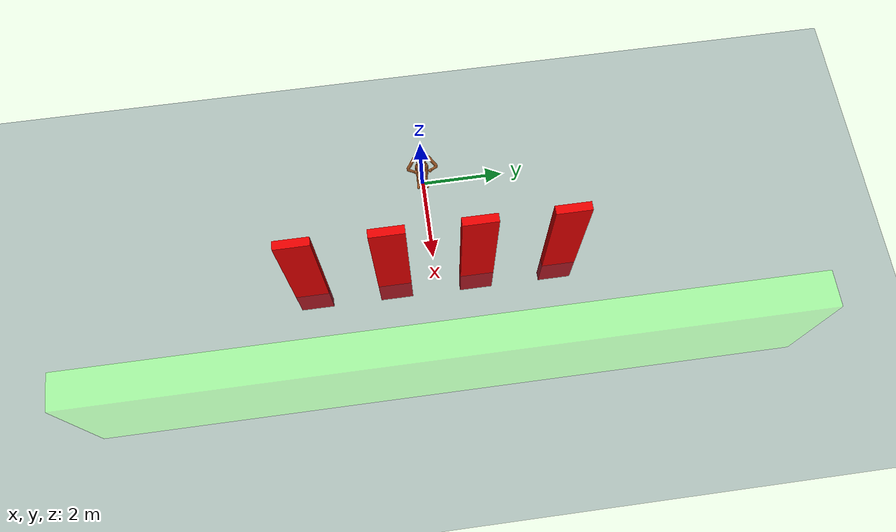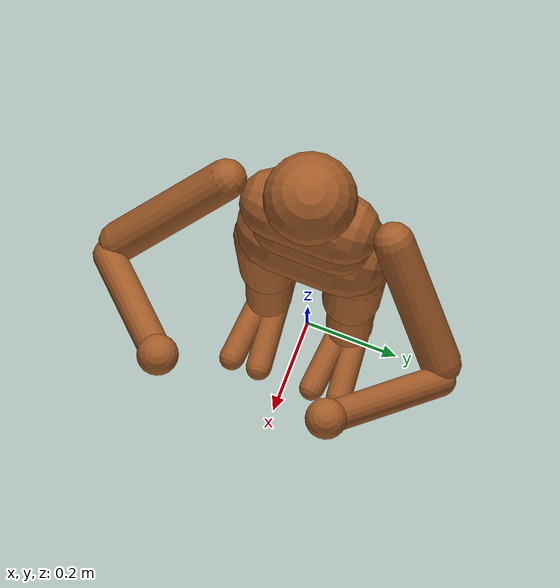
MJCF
<mujoco model="Humanoid">

  <option iterations="8" timestep="0.003"/>

  <visual>
    <map force="0.1" zfar="30"/>
    <rgba haze="0.15 0.25 0.35 1"/>
    <global offwidth="1280" offheight="1440" elevation="-20" azimuth="120"/>
  </visual>

  <statistic center="0 0 0.7"/>

  <asset>
    <texture type="skybox" builtin="gradient" rgb1=".3 .5 .7" rgb2="0 0 0" width="32" height="512"/>
    <texture name="body" type="cube" builtin="flat" mark="cross" width="128" height="128" rgb1="0.8 0.6 0.4" rgb2="0.8 0.6 0.4" markrgb="1 1 1" random="0.01"/>
    <material name="body" texture="body" texuniform="true" rgba="0.8 0.6 .4 1"/>
    <texture name="grid" type="2d" builtin="checker" width="512" height="512" rgb1=".1 .2 .3" rgb2=".2 .3 .4"/>
    <material name="grid" texture="grid" texrepeat="1 1" texuniform="true" reflectance=".2"/>
    <texture builtin="flat" height="1278" mark="cross" markrgb="1 1 1" name="texgeom" random="0.01" rgb1="0.8 0.6 0.4" rgb2="0.8 0.6 0.4" type="cube" width="127"/>
    <texture builtin="checker" height="100" name="texplane" rgb1="0 0 0" rgb2="0.8 0.8 0.8" type="2d" width="100"/>
    <material name="MatPlane" reflectance="0.5" shininess="1" specular="1" texrepeat="60 60" texture="texplane"/>
    <material name="geom" texture="texgeom" texuniform="true"/>
  </asset>

  <default>
    <motor ctrlrange="-5 5" ctrllimited="true"/>
    <default class="body">
      <geom type="capsule" condim="3" friction=".7" solimp=".9 .99 .003" solref=".015 1" material="body" group="1"/>
      <default class="thigh">
        <geom size=".06"/>
      </default>
      <default class="shin">
        <geom fromto="0 0 0 0 0 -.3"  size=".049"/>
      </default>
      <default class="foot">
        <geom size=".027"/>
        <default class="foot1">
          <geom fromto="-.07 -.01 0 .14 -.03 0"/>
        </default>
        <default class="foot2">
          <geom fromto="-.07 .01 0 .14  .03 0"/>
        </default>
      </default>
      <default class="arm_upper">
        <geom size=".04"/>
      </default>
      <default class="arm_lower">
        <geom size=".031"/>
      </default>
      <default class="hand">
        <geom type="sphere" size=".04"/>
      </default>

      <!-- joints -->
      <joint type="hinge" damping=".2" stiffness="1" armature=".01" limited="true" solimplimit="0 .99 .01"/>
      <default class="joint_big">
        <joint damping="5" stiffness="10"/>
        <default class="hip_x">
          <joint range="-30 10"/>
        </default>
        <default class="hip_z">
          <joint range="-60 35"/>
        </default>
        <default class="hip_y">
          <joint axis="0 1 0" range="-150 20"/>
        </default>
        <default class="joint_big_stiff">
          <joint stiffness="20"/>
        </default>
      </default>
      <default class="knee">
        <joint pos="0 0 .02" axis="0 -1 0" range="-160 2" />
      </default>

      <default class="ankle">
        <joint range="-50 50"/>
        <default class="ankle_y">
          <joint pos="0 0 .08" axis="0 1 0" stiffness="6"/>
        </default>
        <default class="ankle_x">
          <joint pos="0 0 .08" stiffness="3"/>
        </default>
      </default>
      <default class="shoulder">
        <joint range="-85 60" stiffness="10"/>
      </default>
      <default class="elbow">
        <joint range="-100 50" stiffness="2"/>
      </default>
    </default>
  </default>

  <worldbody>
    <geom name="floor" type="plane" conaffinity="1" size="0 0 .5" material="grid"/>
    <geom conaffinity="0" contype="0" type="box" pos="5. 0 1" size=" .4 8. 2" rgba="0 .9 0 .3"/>
    <geom conaffinity="0" contype="0" type="box" pos="2.5 -3 1" size=" .1 .4 2" rgba=".9 0 0 1."/>
    <geom conaffinity="0" contype="0" type="box" pos="2.5 -1 1" size=" .1 .4 2" rgba=".9 0 0 1."/>
    <geom conaffinity="0" contype="0" type="box" pos="2.5 1 1" size=" .1 .4 2" rgba=".9 0 0 1."/>
    <geom conaffinity="0" contype="0" type="box" pos="2.5 3 1" size=" .1 .4 2" rgba=".9 0 0 1."/>
    <light cutoff="100" diffuse="1 1 1" dir="-0 0 -1.3" directional="true" exponent="1" pos="0 0 1.3" specular=".1 .1 .1"/>
    <body name="torso" pos="0 0 1.282" childclass="body">
      <light name="top" pos="0 0 2" mode="trackcom"/>
      <camera name="back" pos="-3 0 1" xyaxes="0 -1 0 1 0 2" mode="trackcom"/>
      <camera name="side" pos="0 -3 1" xyaxes="1 0 0 0 1 2" mode="trackcom"/>
      <freejoint name="root"/>
      <geom contype="1" name="torso" fromto="0 -.07 0 0 .07 0" size=".07"/>
      <geom contype="1" name="waist_upper" fromto="-.01 -.06 -.12 -.01 .06 -.12" size=".06"/>
      <body name="head" pos="0 0 .19">
        <geom contype="1" name="head" type="sphere" size=".09"/>
      </body>
      <body name="waist_lower" pos="-.01 0 -.26">
        <geom contype="1" name="waist_lower" fromto="0 -.06 0 0 .06 0" size=".06"/>
        <joint name="abdomen_z" pos="0 0 .065" axis="0 0 1" range="-45 45" class="joint_big_stiff"/>
        <joint name="abdomen_y" pos="0 0 .065" axis="0 1 0" range="-75 30" class="joint_big"/>
        <body name="pelvis" pos="0 0 -.165">
          <joint name="abdomen_x" pos="0 0 .1" axis="1 0 0" range="-35 35" class="joint_big"/>
          <geom contype="1" name="butt" fromto="-.02 -.07 0 -.02 .07 0" size=".09"/>
          <body name="thigh_right" pos="0 -.1 -.04">
            <joint name="hip_x_right" axis="1 0 0" class="hip_x"/>
            <joint name="hip_z_right" axis="0 0 1" class="hip_z"/>
            <joint name="hip_y_right" class="hip_y"/>
            <geom contype="1" name="thigh_right" fromto="0 0 0 0 .01 -.34" class="thigh"/>
            <body name="shin_right" pos="0 .01 -.4">
              <joint name="knee_right" class="knee"/>
              <geom contype="1" name="shin_right" class="shin"/>
              <body name="foot_right" pos="0 0 -.39">
                <joint name="ankle_y_right" class="ankle_y"/>
                <joint name="ankle_x_right" class="ankle_x" axis="1 0 .5"/>
                <geom contype="1" name="foot1_right" class="foot1"/>
                <geom contype="1" name="foot2_right" class="foot2"/>
              </body>
            </body>
          </body>
          <body name="thigh_left" pos="0 .1 -.04">
            <joint name="hip_x_left" axis="-1 0 0" class="hip_x"/>
            <joint name="hip_z_left" axis="0 0 -1" class="hip_z"/>
            <joint name="hip_y_left" class="hip_y"/>
            <geom contype="1" name="thigh_left" fromto="0 0 0 0 -.01 -.34" class="thigh"/>
            <body name="shin_left" pos="0 -.01 -.4">
              <joint name="knee_left" class="knee"/>
              <geom contype="1" name="shin_left" fromto="0 0 0 0 0 -.3" class="shin"/>
              <body name="foot_left" pos="0 0 -.39">
                <joint name="ankle_y_left" class="ankle_y"/>
                <joint name="ankle_x_left" class="ankle_x" axis="-1 0 -.5"/>
                <geom contype="1" name="foot1_left" class="foot1"/>
                <geom contype="1" name="foot2_left" class="foot2"/>
              </body>
            </body>
          </body>
        </body>
      </body>
      <body name="upper_arm_right" pos="0 -.17 .06">
        <joint name="shoulder1_right" axis="2 1 1"  class="shoulder"/>
        <joint name="shoulder2_right" axis="0 -1 1" class="shoulder"/>
        <geom contype="1" name="upper_arm_right" fromto="0 0 0 .16 -.16 -.16" class="arm_upper"/>
        <body name="lower_arm_right" pos=".18 -.18 -.18">
          <joint name="elbow_right" axis="0 -1 1" class="elbow"/>
          <geom contype="1" name="lower_arm_right" fromto=".01 .01 .01 .17 .17 .17" class="arm_lower"/>
          <body name="hand_right" pos=".18 .18 .18">
            <geom contype="1" name="hand_right" class="hand"/>
          </body>
        </body>
      </body>
      <body name="upper_arm_left" pos="0 .17 .06">
        <joint name="shoulder1_left" axis="-2 1 -1" class="shoulder"/>
        <joint name="shoulder2_left" axis="0 -1 -1"  class="shoulder"/>
        <geom contype="1" name="upper_arm_left" fromto="0 0 0 .16 .16 -.16" class="arm_upper"/>
        <body name="lower_arm_left" pos=".18 .18 -.18">
          <joint name="elbow_left" axis="0 -1 -1" class="elbow"/>
          <geom contype="1" name="lower_arm_left" fromto=".01 -.01 .01 .17 -.17 .17" class="arm_lower"/>
          <body name="hand_left" pos=".18 -.18 .18">
            <geom contype="1" name="hand_left" class="hand"/>
          </body>
        </body>
      </body>
    </body>
  </worldbody>

  <actuator>
    <motor name="abdomen_z"       gear="40"  joint="abdomen_z"/>
    <motor name="abdomen_y"       gear="40"  joint="abdomen_y"/>
    <motor name="abdomen_x"       gear="40"  joint="abdomen_x"/>
    <motor name="hip_x_right"     gear="40"  joint="hip_x_right"/>
    <motor name="hip_z_right"     gear="40"  joint="hip_z_right"/>
    <motor name="hip_y_right"     gear="120" joint="hip_y_right"/>
    <motor name="knee_right"      gear="80"  joint="knee_right"/>
    <motor name="ankle_y_right"   gear="20"  joint="ankle_y_right"/>
    <motor name="ankle_x_right"   gear="20"  joint="ankle_x_right"/>
    <motor name="hip_x_left"      gear="40"  joint="hip_x_left"/>
    <motor name="hip_z_left"      gear="40"  joint="hip_z_left"/>
    <motor name="hip_y_left"      gear="120" joint="hip_y_left"/>
    <motor name="knee_left"       gear="80"  joint="knee_left"/>
    <motor name="ankle_y_left"    gear="20"  joint="ankle_y_left"/>
    <motor name="ankle_x_left"    gear="20"  joint="ankle_x_left"/>
    <motor name="shoulder1_right" gear="20"  joint="shoulder1_right"/>
    <motor name="shoulder2_right" gear="20"  joint="shoulder2_right"/>
    <motor name="elbow_right"     gear="40"  joint="elbow_right"/>
    <motor name="shoulder1_left"  gear="20"  joint="shoulder1_left"/>
    <motor name="shoulder2_left"  gear="20"  joint="shoulder2_left"/>
    <motor name="elbow_left"      gear="40"  joint="elbow_left"/>
  </actuator>

  <keyframe>
    <!--
    The values below are split into rows for readibility:
      torso position
      torso orientation
      spinal
      right leg
      left leg
      arms
    -->
    <key name="squat"
         qpos="0 0 0.596
               0.988015 0 0.154359 0
               0 0.4 0
               -0.25 -0.5 -2.5 -2.65 -0.8 0.56
               -0.25 -0.5 -2.5 -2.65 -0.8 0.56
               0 0 0 0 0 0"/>
    <key name="stable_low"
         qpos="0 0 1.225
               1.0 0 0 0
               0 0 0
               0 0 -0.4 -0.8 -0.4 0
               0 0 -0.4 -0.8 -0.4 0
               0 0 0 0 0 0"/>
    <key name="stable_high"
         qpos="0 0 1.267
               1.0 0 0 0
               0 0 0
               0 0 -0.2 -0.4 -0.2 0
               0 0 -0.2 -0.4 -0.2 0
               0 0 0 0 0 0"/>
<!--         qpos="0 0 1.21948-->
<!--         qpos="0.4 0 0.0757706-->
<!--         qpos="-0.4 0 0.08122-->
  </keyframe>
</mujoco>
